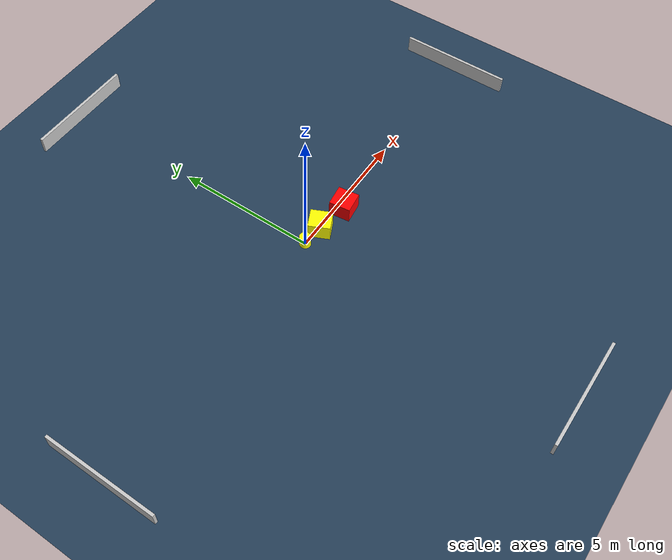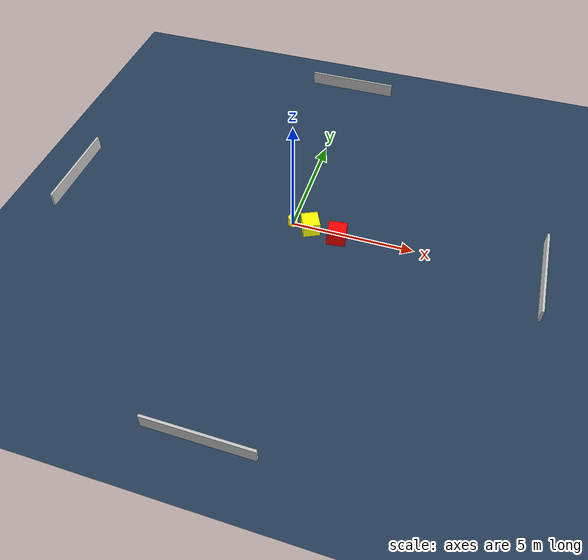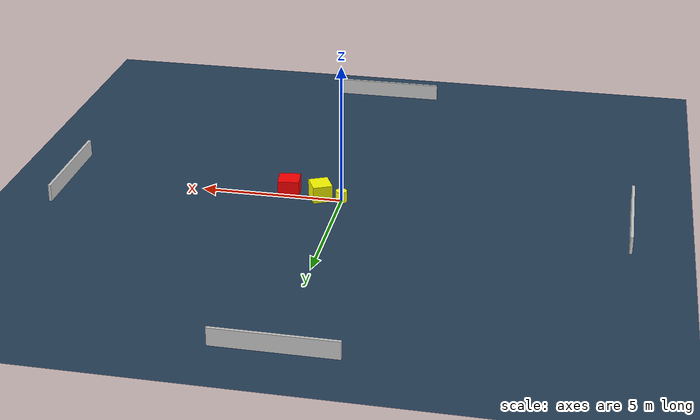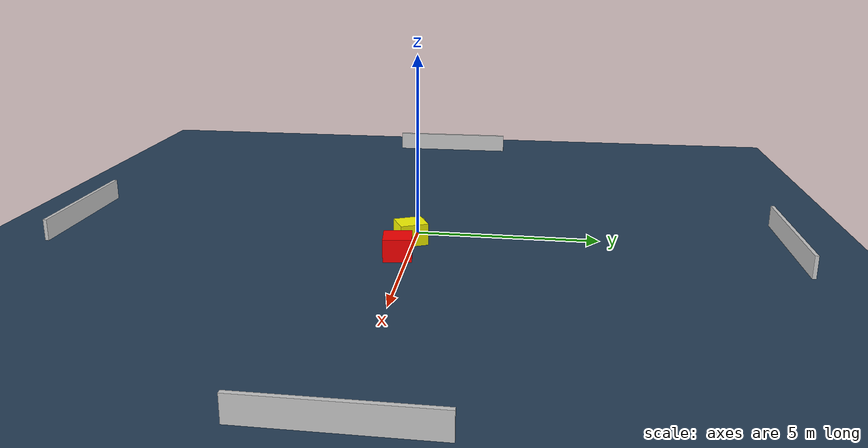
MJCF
<?xml version="1.0" ?>
<mujoco model="generated_environment">
  <option timestep="0.01" integrator="RK4" cone="elliptic"/>
  <default>
    <geom density="1"/>
  </default>
  <asset>
    <texture builtin="gradient" height="3072" name="skybox" rgb1="0.3 0.5 0.7" rgb2="0 0 0" type="skybox" width="512"/>
    <texture builtin="checker" height="300" name="groundplane" rgb1="0.2 0.3 0.4" rgb2="0.1 0.2 0.3" type="2d" width="300"/>
    <material name="groundplane" reflectance="0.2" texrepeat="5 5" texture="groundplane"/>
  </asset>
  <worldbody>
    <light dir="0 0 -1" directional="true" pos="0 0 1.5"/>
    <geom condim="3" friction="0.5 0.005 0.001" material="groundplane" name="floor" pos="0 0 0" size="0 0 0.05" type="plane"/>
    <body name="walls">
      <geom name="wall_1" condim="4" pos="-10.0 0.0 0.3" rgba="0.800000011920929 0.800000011920929 0.800000011920929 1.0" size="0.05 2.0 0.3" type="box"/>
      <geom name="wall_2" condim="4" pos="10.0 0.0 0.3" rgba="0.800000011920929 0.800000011920929 0.800000011920929 1.0" size="0.05 2.0 0.3" type="box"/>
      <geom name="wall_3" condim="4" pos="0.0 -10.0 0.3" rgba="0.800000011920929 0.800000011920929 0.800000011920929 1.0" size="2.0 0.05 0.3" type="box"/>
      <geom name="wall_4" condim="4" pos="0.0 10.0 0.3" rgba="0.800000011920929 0.800000011920929 0.800000011920929 1.0" size="2.0 0.05 0.3" type="box"/>
    </body>
    <body name="robot">
      <joint name="joint_x" type="slide" pos="0 0 0" axis="1 0 0"/>
      <joint name="joint_y" type="slide" pos="0 0 0" axis="0 1 0"/>
      <geom name="robot" type="cylinder" pos="0.0 0.0 0.2" size="0.2 0.2 0.0" mass="5.0" friction="1.0 0.005 0.0001" condim="4" rgba="1.0 1.0 0.0 1.0"/>
    </body>
    <body name="obstacle_1_movable">
      <geom name="obstacle_1_movable" condim="4" pos="0.7665779557293668 -0.08196008849330949 0.3" euler="0 0 115.29640929203252" friction="0.0 0.005 0.001" rgba="1.0 1.0 0.0 1.0" size="0.38487409495778335 0.3472118177575002 0.3" type="box" mass="0.1"/>
      <joint type="free"/>
    </body>
    <body name="obstacle_2_static">
      <geom name="obstacle_2_static" condim="4" pos="1.929560495633866 -0.2601506344204261 0.3" euler="0 0 187.20802480882153" friction="0.0 0.005 0.001" rgba="1.0 0.0 0.0 1.0" size="0.3757414295700421 0.3759892048282494 0.3" type="box"/>
    </body>
  </worldbody>
  <actuator>
    <motor name="actuator_x" joint="joint_x" gear="1" ctrlrange="-1 1"/>
    <motor name="actuator_y" joint="joint_y" gear="1" ctrlrange="-1 1"/>
  </actuator>
</mujoco>
